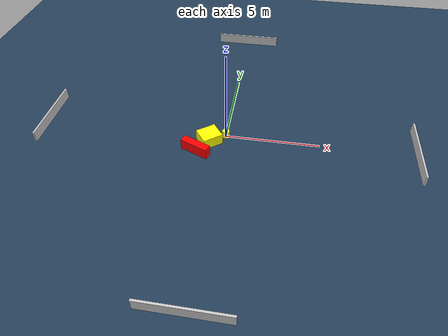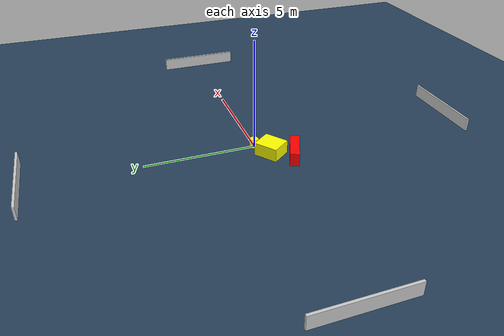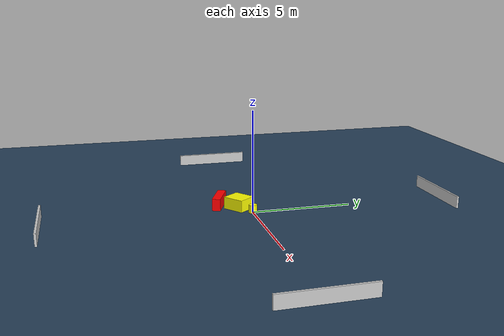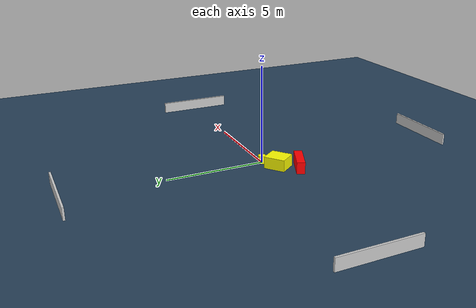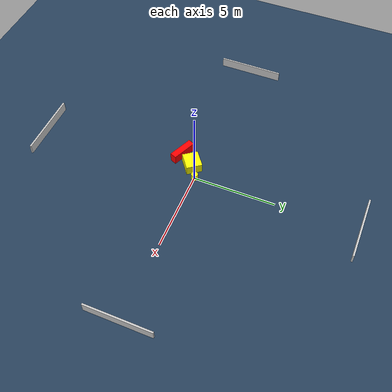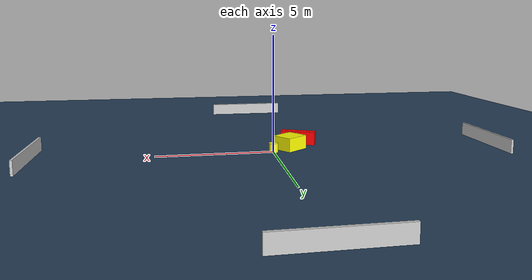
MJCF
<?xml version="1.0" ?>
<mujoco model="generated_environment">
  <option timestep="0.01" integrator="RK4" cone="elliptic"/>
  <default>
    <geom density="1"/>
  </default>
  <asset>
    <texture builtin="gradient" height="3072" name="skybox" rgb1="0.3 0.5 0.7" rgb2="0 0 0" type="skybox" width="512"/>
    <texture builtin="checker" height="300" name="groundplane" rgb1="0.2 0.3 0.4" rgb2="0.1 0.2 0.3" type="2d" width="300"/>
    <material name="groundplane" reflectance="0.2" texrepeat="5 5" texture="groundplane"/>
  </asset>
  <worldbody>
    <light dir="0 0 -1" directional="true" pos="0 0 1.5"/>
    <geom condim="3" friction="0.5 0.005 0.001" material="groundplane" name="floor" pos="0 0 0" size="0 0 0.05" type="plane"/>
    <body name="walls">
      <geom name="wall_1" condim="4" pos="-10.0 0.0 0.3" rgba="0.800000011920929 0.800000011920929 0.800000011920929 1.0" size="0.05 2.0 0.3" type="box"/>
      <geom name="wall_2" condim="4" pos="10.0 0.0 0.3" rgba="0.800000011920929 0.800000011920929 0.800000011920929 1.0" size="0.05 2.0 0.3" type="box"/>
      <geom name="wall_3" condim="4" pos="0.0 -10.0 0.3" rgba="0.800000011920929 0.800000011920929 0.800000011920929 1.0" size="2.0 0.05 0.3" type="box"/>
      <geom name="wall_4" condim="4" pos="0.0 10.0 0.3" rgba="0.800000011920929 0.800000011920929 0.800000011920929 1.0" size="2.0 0.05 0.3" type="box"/>
    </body>
    <body name="robot">
      <joint name="joint_x" type="slide" pos="0 0 0" axis="1 0 0"/>
      <joint name="joint_y" type="slide" pos="0 0 0" axis="0 1 0"/>
      <geom name="robot" type="cylinder" pos="0.0 0.0 0.2" size="0.2 0.2 0.0" mass="5.0" friction="1.0 0.005 0.0001" condim="4" rgba="1.0 1.0 0.0 1.0"/>
    </body>
    <body name="obstacle_1_movable">
      <geom name="obstacle_1_movable" condim="4" pos="-0.818427703886429 -0.4992701652988348 0.3" euler="0 0 127.15111142681363" friction="0.0 0.005 0.001" rgba="1.0 1.0 0.0 1.0" size="0.48179992029663954 0.5483834209586602 0.3" type="box" mass="0.1"/>
      <joint type="free"/>
    </body>
    <body name="obstacle_2_static">
      <geom name="obstacle_2_static" condim="4" pos="-1.3905808114357623 -1.383645448892832 0.3" euler="0 0 67.05245864761527" friction="0.0 0.005 0.001" rgba="1.0 0.0 0.0 1.0" size="0.20682684886901503 0.7776272516219234 0.3" type="box"/>
    </body>
  </worldbody>
  <actuator>
    <motor name="actuator_x" joint="joint_x" gear="1" ctrlrange="-1 1"/>
    <motor name="actuator_y" joint="joint_y" gear="1" ctrlrange="-1 1"/>
  </actuator>
</mujoco>
